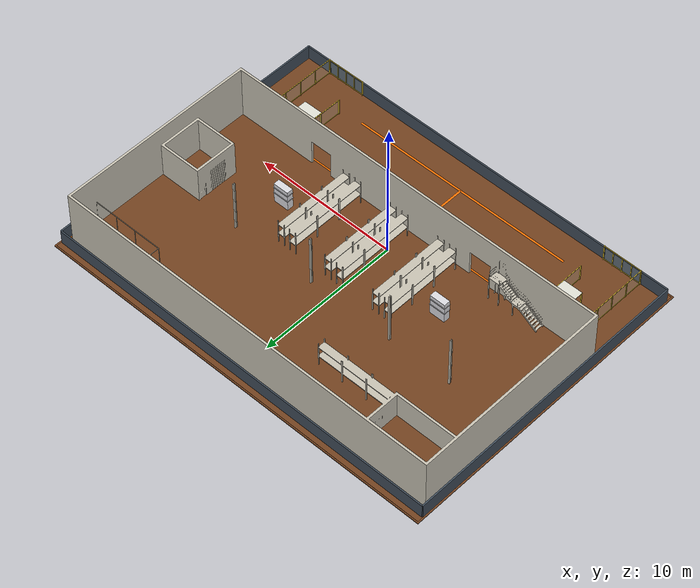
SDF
<?xml version="1.0" ?>
<sdf version="1.8">
  <world name="warehouse_world">
    <gui fullscreen="0">
      <camera name="user_camera">
        <pose>-12 0 8 0 0.62 0.42</pose>
      </camera>
    </gui>

    <physics name="1ms" type="ignored">
      <max_step_size>0.001</max_step_size>
      <real_time_factor>1.0</real_time_factor>
    </physics>

    <scene>
      <ambient>0.6 0.6 0.58 1</ambient>
      <background>0.93 0.95 0.98 1</background>
      <grid>false</grid>
      <shadows>true</shadows>
    </scene>

    <light type="directional" name="warehouse_sun">
      <cast_shadows>true</cast_shadows>
      <pose>0 0 12.5 0 0 0</pose>
      <diffuse>0.98 0.96 0.9 1</diffuse>
      <specular>0.2 0.2 0.2 1</specular>
      <attenuation>
        <range>125</range>
        <constant>0.9</constant>
        <linear>0.01</linear>
        <quadratic>0.001</quadratic>
      </attenuation>
      <direction>-0.35 0.2 -0.9</direction>
    </light>

    <plugin filename="ignition-gazebo-physics-system"
            name="ignition::gazebo::systems::Physics"/>
    <plugin filename="ignition-gazebo-user-commands-system"
            name="ignition::gazebo::systems::UserCommands"/>
    <plugin filename="ignition-gazebo-scene-broadcaster-system"
            name="ignition::gazebo::systems::SceneBroadcaster"/>
    <plugin filename="ignition-gazebo-sensors-system"
            name="ignition::gazebo::systems::Sensors">
      <render_engine>ogre2</render_engine>
    </plugin>

    <model name="floor">
      <static>true</static>
      <link name="floor_link">
        <pose>0 2.2 -0.025 0 0 0</pose>
        <collision name="collision">
          <geometry>
            <box>
              <size>28.6 21.6 0.05</size>
            </box>
          </geometry>
        </collision>
        <visual name="visual">
          <geometry>
            <box>
              <size>28.6 21.6 0.05</size>
            </box>
          </geometry>
          <material>
            <ambient>0.28 0.16 0.08 1</ambient>
            <diffuse>0.45 0.26 0.12 1</diffuse>
            <specular>0.02 0.02 0.02 1</specular>
          </material>
        </visual>
      </link>
    </model>

    <model name="floor_pad">
      <static>true</static>
      <link name="pad_link">
        <visual name="visual">
          <pose>0 2.2 0.001 0 0 0</pose>
          <geometry>
            <box>
              <size>28.4 21.4 0.002</size>
            </box>
          </geometry>
          <material>
            <ambient>0.28 0.16 0.08 1</ambient>
            <diffuse>0.45 0.26 0.12 1</diffuse>
            <specular>0.02 0.02 0.02 1</specular>
          </material>
        </visual>
      </link>
    </model>

    <model name="fence">
      <static>true</static>

      <link name="front">
        <pose>0 12.5 0.5 0 0 0</pose>
        <collision name="collision">
          <geometry>
            <box>
              <size>28.3 0.1 1</size>
            </box>
          </geometry>
        </collision>
        <visual name="visual">
          <geometry>
            <box>
              <size>28.3 0.1 1</size>
            </box>
          </geometry>
          <material>
            <ambient>0.2 0.25 0.3 1</ambient>
            <diffuse>0.25 0.3 0.35 1</diffuse>
          </material>
        </visual>
      </link>

      <link name="back">
        <pose>0 -8.1 0.5 0 0 0</pose>
        <collision name="collision">
          <geometry>
            <box>
              <size>28.3 0.1 1</size>
            </box>
          </geometry>
        </collision>
        <visual name="visual">
          <geometry>
            <box>
              <size>28.3 0.1 1</size>
            </box>
          </geometry>
          <material>
            <ambient>0.2 0.25 0.3 1</ambient>
            <diffuse>0.25 0.3 0.35 1</diffuse>
          </material>
        </visual>
      </link>

      <link name="left">
        <pose>-14.15 2.2 0.5 0 0 0</pose>
        <collision name="collision">
          <geometry>
            <box>
              <size>0.1 20.6 1</size>
            </box>
          </geometry>
        </collision>
        <visual name="visual">
          <geometry>
            <box>
              <size>0.1 20.6 1</size>
            </box>
          </geometry>
          <material>
            <ambient>0.2 0.25 0.3 1</ambient>
            <diffuse>0.25 0.3 0.35 1</diffuse>
          </material>
        </visual>
      </link>

      <link name="right">
        <pose>14.15 2.2 0.5 0 0 0</pose>
        <collision name="collision">
          <geometry>
            <box>
              <size>0.1 20.6 1</size>
            </box>
          </geometry>
        </collision>
        <visual name="visual">
          <geometry>
            <box>
              <size>0.1 20.6 1</size>
            </box>
          </geometry>
          <material>
            <ambient>0.2 0.25 0.3 1</ambient>
            <diffuse>0.25 0.3 0.35 1</diffuse>
          </material>
        </visual>
      </link>
    </model>

    <model name="warehouse_env">
      <static>true</static>
      <link name="link">
        <!-- The STL base sits 0.0254 m below its local origin, so use the same z offset
             here to keep the warehouse floor exactly level with the world floor. -->
        <pose>0 4.94 0 0 0 0</pose>

        <visual name="visual">
          <geometry>
            <mesh>
              <uri>../meshes/environment/env.stl</uri>
              <scale>0.00005 0.00005 0.00005</scale>
            </mesh>
          </geometry>
          <material>
            <ambient>0.62 0.6 0.55 1</ambient>
            <diffuse>0.78 0.76 0.7 1</diffuse>
            <specular>0.02 0.02 0.02 1</specular>
          </material>
        </visual>

      </link>
    </model>

    <model name="warehouse_collision_proxy">
      <static>true</static>

      <link name="left_room_outer_wall">
        <pose>-12.0 9.6 0.75 0 0 0</pose>
        <collision name="collision">
          <geometry>
            <box>
              <size>0.22 4.0 1.5</size>
            </box>
          </geometry>
        </collision>
      </link>

      <link name="left_room_back_wall">
        <pose>-10.2 11.45 0.75 0 0 0</pose>
        <collision name="collision">
          <geometry>
            <box>
              <size>3.8 0.22 1.5</size>
            </box>
          </geometry>
        </collision>
      </link>

      <link name="left_room_inner_wall">
        <pose>-8.55 9.6 0.75 0 0 0</pose>
        <collision name="collision">
          <geometry>
            <box>
              <size>0.22 4.0 1.5</size>
            </box>
          </geometry>
        </collision>
      </link>

      <link name="right_room_outer_wall">
        <pose>12.0 9.6 0.75 0 0 0</pose>
        <collision name="collision">
          <geometry>
            <box>
              <size>0.22 4.0 1.5</size>
            </box>
          </geometry>
        </collision>
      </link>

      <link name="right_room_back_wall">
        <pose>10.2 11.45 0.75 0 0 0</pose>
        <collision name="collision">
          <geometry>
            <box>
              <size>3.8 0.22 1.5</size>
            </box>
          </geometry>
        </collision>
      </link>

      <link name="right_room_inner_wall">
        <pose>8.55 9.6 0.75 0 0 0</pose>
        <collision name="collision">
          <geometry>
            <box>
              <size>0.22 4.0 1.5</size>
            </box>
          </geometry>
        </collision>
      </link>

      <link name="shelf_block_left">
        <pose>-2.2 5.45 0.8 0 0 0</pose>
        <collision name="collision">
          <geometry>
            <box>
              <size>0.85 4.8 1.6</size>
            </box>
          </geometry>
        </collision>
      </link>

      <link name="shelf_block_center">
        <pose>0.15 5.45 0.8 0 0 0</pose>
        <collision name="collision">
          <geometry>
            <box>
              <size>0.85 4.8 1.6</size>
            </box>
          </geometry>
        </collision>
      </link>

      <link name="shelf_block_right">
        <pose>2.5 5.45 0.8 0 0 0</pose>
        <collision name="collision">
          <geometry>
            <box>
              <size>0.85 4.8 1.6</size>
            </box>
          </geometry>
        </collision>
      </link>
    </model>

    <model name="door_rack_obstacles">
      <static>true</static>

      <link name="left_door_rack">
        <pose>-5.45 1.55 0 0 0 0</pose>
        <collision name="rack_body_collision">
          <pose>0 0 0.75 0 0 0</pose>
          <geometry>
            <box>
              <size>1.1 0.45 1.5</size>
            </box>
          </geometry>
        </collision>
        <visual name="rack_body">
          <pose>0 0 0.75 0 0 0</pose>
          <geometry>
            <box>
              <size>1.1 0.45 1.5</size>
            </box>
          </geometry>
          <material>
            <ambient>0.72 0.72 0.74 1</ambient>
            <diffuse>0.86 0.86 0.88 1</diffuse>
            <specular>0.04 0.04 0.04 1</specular>
          </material>
        </visual>
        <visual name="top_shelf">
          <pose>0 0 1.2 0 0 0</pose>
          <geometry>
            <box>
              <size>1.16 0.5 0.05</size>
            </box>
          </geometry>
          <material>
            <ambient>0.78 0.78 0.8 1</ambient>
            <diffuse>0.92 0.92 0.94 1</diffuse>
            <specular>0.04 0.04 0.04 1</specular>
          </material>
        </visual>
        <visual name="mid_shelf">
          <pose>0 0 0.75 0 0 0</pose>
          <geometry>
            <box>
              <size>1.16 0.5 0.05</size>
            </box>
          </geometry>
          <material>
            <ambient>0.78 0.78 0.8 1</ambient>
            <diffuse>0.92 0.92 0.94 1</diffuse>
            <specular>0.04 0.04 0.04 1</specular>
          </material>
        </visual>
      </link>

      <link name="right_door_rack">
        <pose>6.9 1.55 0 0 0 0</pose>
        <collision name="rack_body_collision">
          <pose>0 0 0.75 0 0 0</pose>
          <geometry>
            <box>
              <size>1.1 0.45 1.5</size>
            </box>
          </geometry>
        </collision>
        <visual name="rack_body">
          <pose>0 0 0.75 0 0 0</pose>
          <geometry>
            <box>
              <size>1.1 0.45 1.5</size>
            </box>
          </geometry>
          <material>
            <ambient>0.72 0.72 0.74 1</ambient>
            <diffuse>0.86 0.86 0.88 1</diffuse>
            <specular>0.04 0.04 0.04 1</specular>
          </material>
        </visual>
        <visual name="top_shelf">
          <pose>0 0 1.2 0 0 0</pose>
          <geometry>
            <box>
              <size>1.16 0.5 0.05</size>
            </box>
          </geometry>
          <material>
            <ambient>0.78 0.78 0.8 1</ambient>
            <diffuse>0.92 0.92 0.94 1</diffuse>
            <specular>0.04 0.04 0.04 1</specular>
          </material>
        </visual>
        <visual name="mid_shelf">
          <pose>0 0 0.75 0 0 0</pose>
          <geometry>
            <box>
              <size>1.16 0.5 0.05</size>
            </box>
          </geometry>
          <material>
            <ambient>0.78 0.78 0.8 1</ambient>
            <diffuse>0.92 0.92 0.94 1</diffuse>
            <specular>0.04 0.04 0.04 1</specular>
          </material>
        </visual>
      </link>
    </model>

    <model name="warehouse_zone_marking">
      <static>true</static>
      <link name="marking_link">
        <visual name="front_strip">
          <pose>0 12.09 0.00125 0 0 0</pose>
          <geometry>
            <box>
              <size>28.1 0.11 0.0025</size>
            </box>
          </geometry>
          <material>
            <ambient>0.95 0.35 0.0 1</ambient>
            <diffuse>1.0 0.45 0.0 1</diffuse>
            <specular>0.02 0.02 0.02 1</specular>
          </material>
        </visual>

        <visual name="back_strip">
          <pose>0 -2.21 0.00125 0 0 0</pose>
          <geometry>
            <box>
              <size>28.1 0.11 0.0025</size>
            </box>
          </geometry>
          <material>
            <ambient>0.95 0.35 0.0 1</ambient>
            <diffuse>1.0 0.45 0.0 1</diffuse>
            <specular>0.02 0.02 0.02 1</specular>
          </material>
        </visual>

        <visual name="left_strip">
          <pose>-14.105 4.94 0.00125 0 0 0</pose>
          <geometry>
            <box>
              <size>0.11 14.3 0.0025</size>
            </box>
          </geometry>
          <material>
            <ambient>0.95 0.35 0.0 1</ambient>
            <diffuse>1.0 0.45 0.0 1</diffuse>
            <specular>0.02 0.02 0.02 1</specular>
          </material>
        </visual>

        <visual name="right_strip">
          <pose>14.105 4.94 0.00125 0 0 0</pose>
          <geometry>
            <box>
              <size>0.11 14.3 0.0025</size>
            </box>
          </geometry>
          <material>
            <ambient>0.95 0.35 0.0 1</ambient>
            <diffuse>1.0 0.45 0.0 1</diffuse>
            <specular>0.02 0.02 0.02 1</specular>
          </material>
        </visual>

        <collision name="collision">
          <geometry>
            <mesh>
              <uri>../meshes/environment/env.stl</uri>
              <scale>0.00005 0.00005 0.00005</scale>
            </mesh>
          </geometry>
        </collision>
      </link>
    </model>

    <model name="t_path_marking">
      <static>true</static>
      <link name="t_path_link">
        <visual name="cross_bar">
          <pose>0 -6.3 0.00125 0 0 0</pose>
          <geometry>
            <box>
              <size>16 0.14 0.0025</size>
            </box>
          </geometry>
          <material>
            <ambient>0.95 0.35 0.0 1</ambient>
            <diffuse>1.0 0.45 0.0 1</diffuse>
            <specular>0.02 0.02 0.02 1</specular>
          </material>
        </visual>

        <visual name="stem">
          <pose>0 -4.15 0.00125 0 0 0</pose>
          <geometry>
            <box>
              <size>0.14 4.3 0.0025</size>
            </box>
          </geometry>
          <material>
            <ambient>0.95 0.35 0.0 1</ambient>
            <diffuse>1.0 0.45 0.0 1</diffuse>
            <specular>0.02 0.02 0.02 1</specular>
          </material>
        </visual>
      </link>
    </model>

    <model name="security_fence_back_right">
      <static>true</static>
      <pose>10.9 -5.45 0 0 0 0</pose>

      <link name="back_panel">
        <pose>0 -2.55 0 0 0 0</pose>
        <collision name="panel_collision">
          <pose>0 0 0.6 0 0 0</pose>
          <geometry>
            <box>
              <size>2.7 0.03 1.15</size>
            </box>
          </geometry>
        </collision>
        <visual name="panel_mesh">
          <pose>0 0 0.6 0 0 0</pose>
          <geometry>
            <box>
              <size>2.55 0.0125 1.025</size>
            </box>
          </geometry>
          <material>
            <ambient>0.75 0.77 0.78 0.25</ambient>
            <diffuse>0.82 0.84 0.85 0.25</diffuse>
            <specular>0.1 0.1 0.1 0.2</specular>
          </material>
        </visual>
        <visual name="top_rail">
          <pose>0 0 1.175 0 0 0</pose>
          <geometry>
            <box>
              <size>2.7 0.04 0.04</size>
            </box>
          </geometry>
          <material>
            <ambient>0.88 0.76 0.18 1</ambient>
            <diffuse>0.95 0.82 0.2 1</diffuse>
          </material>
        </visual>
        <visual name="bottom_rail">
          <pose>0 0 0.075 0 0 0</pose>
          <geometry>
            <box>
              <size>2.7 0.04 0.04</size>
            </box>
          </geometry>
          <material>
            <ambient>0.88 0.76 0.18 1</ambient>
            <diffuse>0.95 0.82 0.2 1</diffuse>
          </material>
        </visual>
        <visual name="left_post">
          <pose>-1.35 0 0.6 0 0 0</pose>
          <geometry>
            <box>
              <size>0.06 0.06 1.2</size>
            </box>
          </geometry>
          <material>
            <ambient>0.88 0.76 0.18 1</ambient>
            <diffuse>0.95 0.82 0.2 1</diffuse>
          </material>
        </visual>
        <visual name="mid_left_post">
          <pose>-0.675 0 0.6 0 0 0</pose>
          <geometry>
            <box>
              <size>0.05 0.05 1.2</size>
            </box>
          </geometry>
          <material>
            <ambient>0.88 0.76 0.18 1</ambient>
            <diffuse>0.95 0.82 0.2 1</diffuse>
          </material>
        </visual>
        <visual name="mid_post">
          <pose>0 0 0.6 0 0 0</pose>
          <geometry>
            <box>
              <size>0.05 0.05 1.2</size>
            </box>
          </geometry>
          <material>
            <ambient>0.88 0.76 0.18 1</ambient>
            <diffuse>0.95 0.82 0.2 1</diffuse>
          </material>
        </visual>
        <visual name="mid_right_post">
          <pose>0.675 0 0.6 0 0 0</pose>
          <geometry>
            <box>
              <size>0.05 0.05 1.2</size>
            </box>
          </geometry>
          <material>
            <ambient>0.88 0.76 0.18 1</ambient>
            <diffuse>0.95 0.82 0.2 1</diffuse>
          </material>
        </visual>
        <visual name="right_post">
          <pose>1.35 0 0.6 0 0 0</pose>
          <geometry>
            <box>
              <size>0.06 0.06 1.2</size>
            </box>
          </geometry>
          <material>
            <ambient>0.88 0.76 0.18 1</ambient>
            <diffuse>0.95 0.82 0.2 1</diffuse>
          </material>
        </visual>
      </link>

      <link name="right_panel">
        <pose>1.375 0 0 0 0 1.5708</pose>
        <collision name="panel_collision">
          <pose>0 0 0.6 0 0 0</pose>
          <geometry>
            <box>
              <size>5.1 0.03 1.15</size>
            </box>
          </geometry>
        </collision>
        <visual name="panel_mesh">
          <pose>0 0 0.6 0 0 0</pose>
          <geometry>
            <box>
              <size>4.95 0.0125 1.025</size>
            </box>
          </geometry>
          <material>
            <ambient>0.75 0.77 0.78 0.25</ambient>
            <diffuse>0.82 0.84 0.85 0.25</diffuse>
            <specular>0.1 0.1 0.1 0.2</specular>
          </material>
        </visual>
        <visual name="top_rail">
          <pose>0 0 1.175 0 0 0</pose>
          <geometry>
            <box>
              <size>5.1 0.04 0.04</size>
            </box>
          </geometry>
          <material>
            <ambient>0.88 0.76 0.18 1</ambient>
            <diffuse>0.95 0.82 0.2 1</diffuse>
          </material>
        </visual>
        <visual name="bottom_rail">
          <pose>0 0 0.075 0 0 0</pose>
          <geometry>
            <box>
              <size>5.1 0.04 0.04</size>
            </box>
          </geometry>
          <material>
            <ambient>0.88 0.76 0.18 1</ambient>
            <diffuse>0.95 0.82 0.2 1</diffuse>
          </material>
        </visual>
        <visual name="rear_post">
          <pose>-2.55 0 0.6 0 0 0</pose>
          <geometry>
            <box>
              <size>0.06 0.06 1.2</size>
            </box>
          </geometry>
          <material>
            <ambient>0.88 0.76 0.18 1</ambient>
            <diffuse>0.95 0.82 0.2 1</diffuse>
          </material>
        </visual>
        <visual name="rear_mid_post">
          <pose>-1.275 0 0.6 0 0 0</pose>
          <geometry>
            <box>
              <size>0.05 0.05 1.2</size>
            </box>
          </geometry>
          <material>
            <ambient>0.88 0.76 0.18 1</ambient>
            <diffuse>0.95 0.82 0.2 1</diffuse>
          </material>
        </visual>
        <visual name="mid_post">
          <pose>0 0 0.6 0 0 0</pose>
          <geometry>
            <box>
              <size>0.05 0.05 1.2</size>
            </box>
          </geometry>
          <material>
            <ambient>0.88 0.76 0.18 1</ambient>
            <diffuse>0.95 0.82 0.2 1</diffuse>
          </material>
        </visual>
        <visual name="front_mid_post">
          <pose>1.275 0 0.6 0 0 0</pose>
          <geometry>
            <box>
              <size>0.05 0.05 1.2</size>
            </box>
          </geometry>
          <material>
            <ambient>0.88 0.76 0.18 1</ambient>
            <diffuse>0.95 0.82 0.2 1</diffuse>
          </material>
        </visual>
        <visual name="front_post">
          <pose>2.55 0 0.6 0 0 0</pose>
          <geometry>
            <box>
              <size>0.06 0.06 1.2</size>
            </box>
          </geometry>
          <material>
            <ambient>0.88 0.76 0.18 1</ambient>
            <diffuse>0.95 0.82 0.2 1</diffuse>
          </material>
        </visual>
      </link>

      <link name="front_run">
        <pose>0.4 2.55 0 0 0 0</pose>
        <collision name="panel_collision">
          <pose>0 0 0.6 0 0 0</pose>
          <geometry>
            <box>
              <size>1.9 0.03 1.15</size>
            </box>
          </geometry>
        </collision>
        <collision name="left_post_collision">
          <pose>-0.95 0 0.6 0 0 0</pose>
          <geometry>
            <box>
              <size>0.06 0.06 1.2</size>
            </box>
          </geometry>
        </collision>
        <collision name="right_post_collision">
          <pose>0.95 0 0.6 0 0 0</pose>
          <geometry>
            <box>
              <size>0.06 0.06 1.2</size>
            </box>
          </geometry>
        </collision>
        <visual name="panel_mesh">
          <pose>0 0 0.6 0 0 0</pose>
          <geometry>
            <box>
              <size>1.75 0.0125 1.025</size>
            </box>
          </geometry>
          <material>
            <ambient>0.75 0.77 0.78 0.25</ambient>
            <diffuse>0.82 0.84 0.85 0.25</diffuse>
            <specular>0.1 0.1 0.1 0.2</specular>
          </material>
        </visual>
        <visual name="top_rail">
          <pose>0 0 1.175 0 0 0</pose>
          <geometry>
            <box>
              <size>1.9 0.04 0.04</size>
            </box>
          </geometry>
          <material>
            <ambient>0.88 0.76 0.18 1</ambient>
            <diffuse>0.95 0.82 0.2 1</diffuse>
          </material>
        </visual>
        <visual name="bottom_rail">
          <pose>0 0 0.075 0 0 0</pose>
          <geometry>
            <box>
              <size>1.9 0.04 0.04</size>
            </box>
          </geometry>
          <material>
            <ambient>0.88 0.76 0.18 1</ambient>
            <diffuse>0.95 0.82 0.2 1</diffuse>
          </material>
        </visual>
        <visual name="left_post">
          <pose>-0.95 0 0.6 0 0 0</pose>
          <geometry>
            <box>
              <size>0.06 0.06 1.2</size>
            </box>
          </geometry>
          <material>
            <ambient>0.88 0.76 0.18 1</ambient>
            <diffuse>0.95 0.82 0.2 1</diffuse>
          </material>
        </visual>
        <visual name="right_post">
          <pose>0.95 0 0.6 0 0 0</pose>
          <geometry>
            <box>
              <size>0.06 0.06 1.2</size>
            </box>
          </geometry>
          <material>
            <ambient>0.88 0.76 0.18 1</ambient>
            <diffuse>0.95 0.82 0.2 1</diffuse>
          </material>
        </visual>
      </link>

      <link name="left_return">
        <pose>-1.375 1.075 0 0 0 1.5708</pose>
        <collision name="panel_collision">
          <pose>0 0 0.6 0 0 0</pose>
          <geometry>
            <box>
              <size>3.1 0.03 1.15</size>
            </box>
          </geometry>
        </collision>
        <collision name="rear_post_collision">
          <pose>-1.55 0 0.6 0 0 0</pose>
          <geometry>
            <box>
              <size>0.06 0.06 1.2</size>
            </box>
          </geometry>
        </collision>
        <collision name="front_post_collision">
          <pose>1.55 0 0.6 0 0 0</pose>
          <geometry>
            <box>
              <size>0.06 0.06 1.2</size>
            </box>
          </geometry>
        </collision>
        <visual name="panel_mesh">
          <pose>0 0 0.6 0 0 0</pose>
          <geometry>
            <box>
              <size>2.95 0.0125 1.025</size>
            </box>
          </geometry>
          <material>
            <ambient>0.75 0.77 0.78 0.25</ambient>
            <diffuse>0.82 0.84 0.85 0.25</diffuse>
            <specular>0.1 0.1 0.1 0.2</specular>
          </material>
        </visual>
        <visual name="top_rail">
          <pose>0 0 1.175 0 0 0</pose>
          <geometry>
            <box>
              <size>3.1 0.04 0.04</size>
            </box>
          </geometry>
          <material>
            <ambient>0.88 0.76 0.18 1</ambient>
            <diffuse>0.95 0.82 0.2 1</diffuse>
          </material>
        </visual>
        <visual name="bottom_rail">
          <pose>0 0 0.075 0 0 0</pose>
          <geometry>
            <box>
              <size>3.1 0.04 0.04</size>
            </box>
          </geometry>
          <material>
            <ambient>0.88 0.76 0.18 1</ambient>
            <diffuse>0.95 0.82 0.2 1</diffuse>
          </material>
        </visual>
        <visual name="rear_post">
          <pose>-1.55 0 0.6 0 0 0</pose>
          <geometry>
            <box>
              <size>0.06 0.06 1.2</size>
            </box>
          </geometry>
          <material>
            <ambient>0.88 0.76 0.18 1</ambient>
            <diffuse>0.95 0.82 0.2 1</diffuse>
          </material>
        </visual>
        <visual name="front_post">
          <pose>1.55 0 0.6 0 0 0</pose>
          <geometry>
            <box>
              <size>0.06 0.06 1.2</size>
            </box>
          </geometry>
          <material>
            <ambient>0.88 0.76 0.18 1</ambient>
            <diffuse>0.95 0.82 0.2 1</diffuse>
          </material>
        </visual>
      </link>

      <link name="roofed_bay">
        <pose>-0.675 1.775 0 0 0 0</pose>
        <collision name="roof_collision">
          <pose>0 0 1.19 0 0 0</pose>
          <geometry>
            <box>
              <size>1.35 1.55 0.04</size>
            </box>
          </geometry>
        </collision>
        <collision name="left_front_post_collision">
          <pose>-0.65 0.725 0.6 0 0 0</pose>
          <geometry>
            <box>
              <size>0.06 0.06 1.2</size>
            </box>
          </geometry>
        </collision>
        <collision name="right_front_post_collision">
          <pose>0.65 0.725 0.6 0 0 0</pose>
          <geometry>
            <box>
              <size>0.06 0.06 1.2</size>
            </box>
          </geometry>
        </collision>
        <collision name="left_rear_post_collision">
          <pose>-0.65 -0.725 0.6 0 0 0</pose>
          <geometry>
            <box>
              <size>0.06 0.06 1.2</size>
            </box>
          </geometry>
        </collision>
        <collision name="right_rear_post_collision">
          <pose>0.65 -0.725 0.6 0 0 0</pose>
          <geometry>
            <box>
              <size>0.06 0.06 1.2</size>
            </box>
          </geometry>
        </collision>
        <visual name="roof">
          <pose>0 0 1.19 0 0 0</pose>
          <geometry>
            <box>
              <size>1.35 1.55 0.04</size>
            </box>
          </geometry>
          <material>
            <ambient>0.8 0.8 0.76 1</ambient>
            <diffuse>0.88 0.88 0.84 1</diffuse>
            <specular>0.05 0.05 0.05 1</specular>
          </material>
        </visual>
        <visual name="left_front_post">
          <pose>-0.65 0.725 0.6 0 0 0</pose>
          <geometry>
            <box>
              <size>0.06 0.06 1.2</size>
            </box>
          </geometry>
          <material>
            <ambient>0.88 0.76 0.18 1</ambient>
            <diffuse>0.95 0.82 0.2 1</diffuse>
          </material>
        </visual>
        <visual name="right_front_post">
          <pose>0.65 0.725 0.6 0 0 0</pose>
          <geometry>
            <box>
              <size>0.06 0.06 1.2</size>
            </box>
          </geometry>
          <material>
            <ambient>0.88 0.76 0.18 1</ambient>
            <diffuse>0.95 0.82 0.2 1</diffuse>
          </material>
        </visual>
        <visual name="left_rear_post">
          <pose>-0.65 -0.725 0.6 0 0 0</pose>
          <geometry>
            <box>
              <size>0.06 0.06 1.2</size>
            </box>
          </geometry>
          <material>
            <ambient>0.88 0.76 0.18 1</ambient>
            <diffuse>0.95 0.82 0.2 1</diffuse>
          </material>
        </visual>
        <visual name="right_rear_post">
          <pose>0.65 -0.725 0.6 0 0 0</pose>
          <geometry>
            <box>
              <size>0.06 0.06 1.2</size>
            </box>
          </geometry>
          <material>
            <ambient>0.88 0.76 0.18 1</ambient>
            <diffuse>0.95 0.82 0.2 1</diffuse>
          </material>
        </visual>
        <visual name="door_panel">
          <pose>0 0.74 0.55 0 0 0</pose>
          <geometry>
            <box>
              <size>1.1 0.015 0.95</size>
            </box>
          </geometry>
          <material>
            <ambient>0.75 0.77 0.78 0.2</ambient>
            <diffuse>0.82 0.84 0.85 0.2</diffuse>
            <specular>0.1 0.1 0.1 0.2</specular>
          </material>
        </visual>
      </link>
    </model>

    <model name="security_fence_back_left">
      <static>true</static>
      <pose>-10.9 -5.45 0 0 0 0</pose>

      <link name="back_panel">
        <pose>0 -2.55 0 0 0 0</pose>
        <collision name="panel_collision">
          <pose>0 0 0.6 0 0 0</pose>
          <geometry>
            <box>
              <size>2.7 0.03 1.15</size>
            </box>
          </geometry>
        </collision>
        <visual name="panel_mesh">
          <pose>0 0 0.6 0 0 0</pose>
          <geometry>
            <box>
              <size>2.55 0.0125 1.025</size>
            </box>
          </geometry>
          <material>
            <ambient>0.75 0.77 0.78 0.25</ambient>
            <diffuse>0.82 0.84 0.85 0.25</diffuse>
            <specular>0.1 0.1 0.1 0.2</specular>
          </material>
        </visual>
        <visual name="top_rail">
          <pose>0 0 1.175 0 0 0</pose>
          <geometry>
            <box>
              <size>2.7 0.04 0.04</size>
            </box>
          </geometry>
          <material>
            <ambient>0.88 0.76 0.18 1</ambient>
            <diffuse>0.95 0.82 0.2 1</diffuse>
          </material>
        </visual>
        <visual name="bottom_rail">
          <pose>0 0 0.075 0 0 0</pose>
          <geometry>
            <box>
              <size>2.7 0.04 0.04</size>
            </box>
          </geometry>
          <material>
            <ambient>0.88 0.76 0.18 1</ambient>
            <diffuse>0.95 0.82 0.2 1</diffuse>
          </material>
        </visual>
        <visual name="left_post">
          <pose>-1.35 0 0.6 0 0 0</pose>
          <geometry>
            <box>
              <size>0.06 0.06 1.2</size>
            </box>
          </geometry>
          <material>
            <ambient>0.88 0.76 0.18 1</ambient>
            <diffuse>0.95 0.82 0.2 1</diffuse>
          </material>
        </visual>
        <visual name="mid_left_post">
          <pose>-0.675 0 0.6 0 0 0</pose>
          <geometry>
            <box>
              <size>0.05 0.05 1.2</size>
            </box>
          </geometry>
          <material>
            <ambient>0.88 0.76 0.18 1</ambient>
            <diffuse>0.95 0.82 0.2 1</diffuse>
          </material>
        </visual>
        <visual name="mid_post">
          <pose>0 0 0.6 0 0 0</pose>
          <geometry>
            <box>
              <size>0.05 0.05 1.2</size>
            </box>
          </geometry>
          <material>
            <ambient>0.88 0.76 0.18 1</ambient>
            <diffuse>0.95 0.82 0.2 1</diffuse>
          </material>
        </visual>
        <visual name="mid_right_post">
          <pose>0.675 0 0.6 0 0 0</pose>
          <geometry>
            <box>
              <size>0.05 0.05 1.2</size>
            </box>
          </geometry>
          <material>
            <ambient>0.88 0.76 0.18 1</ambient>
            <diffuse>0.95 0.82 0.2 1</diffuse>
          </material>
        </visual>
        <visual name="right_post">
          <pose>1.35 0 0.6 0 0 0</pose>
          <geometry>
            <box>
              <size>0.06 0.06 1.2</size>
            </box>
          </geometry>
          <material>
            <ambient>0.88 0.76 0.18 1</ambient>
            <diffuse>0.95 0.82 0.2 1</diffuse>
          </material>
        </visual>
      </link>

      <link name="left_panel">
        <pose>-1.375 0 0 0 0 1.5708</pose>
        <collision name="panel_collision">
          <pose>0 0 0.6 0 0 0</pose>
          <geometry>
            <box>
              <size>5.1 0.03 1.15</size>
            </box>
          </geometry>
        </collision>
        <visual name="panel_mesh">
          <pose>0 0 0.6 0 0 0</pose>
          <geometry>
            <box>
              <size>4.95 0.0125 1.025</size>
            </box>
          </geometry>
          <material>
            <ambient>0.75 0.77 0.78 0.25</ambient>
            <diffuse>0.82 0.84 0.85 0.25</diffuse>
            <specular>0.1 0.1 0.1 0.2</specular>
          </material>
        </visual>
        <visual name="top_rail">
          <pose>0 0 1.175 0 0 0</pose>
          <geometry>
            <box>
              <size>5.1 0.04 0.04</size>
            </box>
          </geometry>
          <material>
            <ambient>0.88 0.76 0.18 1</ambient>
            <diffuse>0.95 0.82 0.2 1</diffuse>
          </material>
        </visual>
        <visual name="bottom_rail">
          <pose>0 0 0.075 0 0 0</pose>
          <geometry>
            <box>
              <size>5.1 0.04 0.04</size>
            </box>
          </geometry>
          <material>
            <ambient>0.88 0.76 0.18 1</ambient>
            <diffuse>0.95 0.82 0.2 1</diffuse>
          </material>
        </visual>
        <visual name="rear_post">
          <pose>-2.55 0 0.6 0 0 0</pose>
          <geometry>
            <box>
              <size>0.06 0.06 1.2</size>
            </box>
          </geometry>
          <material>
            <ambient>0.88 0.76 0.18 1</ambient>
            <diffuse>0.95 0.82 0.2 1</diffuse>
          </material>
        </visual>
        <visual name="rear_mid_post">
          <pose>-1.275 0 0.6 0 0 0</pose>
          <geometry>
            <box>
              <size>0.05 0.05 1.2</size>
            </box>
          </geometry>
          <material>
            <ambient>0.88 0.76 0.18 1</ambient>
            <diffuse>0.95 0.82 0.2 1</diffuse>
          </material>
        </visual>
        <visual name="mid_post">
          <pose>0 0 0.6 0 0 0</pose>
          <geometry>
            <box>
              <size>0.05 0.05 1.2</size>
            </box>
          </geometry>
          <material>
            <ambient>0.88 0.76 0.18 1</ambient>
            <diffuse>0.95 0.82 0.2 1</diffuse>
          </material>
        </visual>
        <visual name="front_mid_post">
          <pose>1.275 0 0.6 0 0 0</pose>
          <geometry>
            <box>
              <size>0.05 0.05 1.2</size>
            </box>
          </geometry>
          <material>
            <ambient>0.88 0.76 0.18 1</ambient>
            <diffuse>0.95 0.82 0.2 1</diffuse>
          </material>
        </visual>
        <visual name="front_post">
          <pose>2.55 0 0.6 0 0 0</pose>
          <geometry>
            <box>
              <size>0.06 0.06 1.2</size>
            </box>
          </geometry>
          <material>
            <ambient>0.88 0.76 0.18 1</ambient>
            <diffuse>0.95 0.82 0.2 1</diffuse>
          </material>
        </visual>
      </link>

      <link name="front_run">
        <pose>-0.4 2.55 0 0 0 0</pose>
        <collision name="panel_collision">
          <pose>0 0 0.6 0 0 0</pose>
          <geometry>
            <box>
              <size>1.9 0.03 1.15</size>
            </box>
          </geometry>
        </collision>
        <collision name="left_post_collision">
          <pose>-0.95 0 0.6 0 0 0</pose>
          <geometry>
            <box>
              <size>0.06 0.06 1.2</size>
            </box>
          </geometry>
        </collision>
        <collision name="right_post_collision">
          <pose>0.95 0 0.6 0 0 0</pose>
          <geometry>
            <box>
              <size>0.06 0.06 1.2</size>
            </box>
          </geometry>
        </collision>
        <visual name="panel_mesh">
          <pose>0 0 0.6 0 0 0</pose>
          <geometry>
            <box>
              <size>1.75 0.0125 1.025</size>
            </box>
          </geometry>
          <material>
            <ambient>0.75 0.77 0.78 0.25</ambient>
            <diffuse>0.82 0.84 0.85 0.25</diffuse>
            <specular>0.1 0.1 0.1 0.2</specular>
          </material>
        </visual>
        <visual name="top_rail">
          <pose>0 0 1.175 0 0 0</pose>
          <geometry>
            <box>
              <size>1.9 0.04 0.04</size>
            </box>
          </geometry>
          <material>
            <ambient>0.88 0.76 0.18 1</ambient>
            <diffuse>0.95 0.82 0.2 1</diffuse>
          </material>
        </visual>
        <visual name="bottom_rail">
          <pose>0 0 0.075 0 0 0</pose>
          <geometry>
            <box>
              <size>1.9 0.04 0.04</size>
            </box>
          </geometry>
          <material>
            <ambient>0.88 0.76 0.18 1</ambient>
            <diffuse>0.95 0.82 0.2 1</diffuse>
          </material>
        </visual>
        <visual name="left_post">
          <pose>-0.95 0 0.6 0 0 0</pose>
          <geometry>
            <box>
              <size>0.06 0.06 1.2</size>
            </box>
          </geometry>
          <material>
            <ambient>0.88 0.76 0.18 1</ambient>
            <diffuse>0.95 0.82 0.2 1</diffuse>
          </material>
        </visual>
        <visual name="right_post">
          <pose>0.95 0 0.6 0 0 0</pose>
          <geometry>
            <box>
              <size>0.06 0.06 1.2</size>
            </box>
          </geometry>
          <material>
            <ambient>0.88 0.76 0.18 1</ambient>
            <diffuse>0.95 0.82 0.2 1</diffuse>
          </material>
        </visual>
      </link>

      <link name="right_return">
        <pose>1.375 1.075 0 0 0 1.5708</pose>
        <collision name="panel_collision">
          <pose>0 0 0.6 0 0 0</pose>
          <geometry>
            <box>
              <size>3.1 0.03 1.15</size>
            </box>
          </geometry>
        </collision>
        <collision name="rear_post_collision">
          <pose>-1.55 0 0.6 0 0 0</pose>
          <geometry>
            <box>
              <size>0.06 0.06 1.2</size>
            </box>
          </geometry>
        </collision>
        <collision name="front_post_collision">
          <pose>1.55 0 0.6 0 0 0</pose>
          <geometry>
            <box>
              <size>0.06 0.06 1.2</size>
            </box>
          </geometry>
        </collision>
        <visual name="panel_mesh">
          <pose>0 0 0.6 0 0 0</pose>
          <geometry>
            <box>
              <size>2.95 0.0125 1.025</size>
            </box>
          </geometry>
          <material>
            <ambient>0.75 0.77 0.78 0.25</ambient>
            <diffuse>0.82 0.84 0.85 0.25</diffuse>
            <specular>0.1 0.1 0.1 0.2</specular>
          </material>
        </visual>
        <visual name="top_rail">
          <pose>0 0 1.175 0 0 0</pose>
          <geometry>
            <box>
              <size>3.1 0.04 0.04</size>
            </box>
          </geometry>
          <material>
            <ambient>0.88 0.76 0.18 1</ambient>
            <diffuse>0.95 0.82 0.2 1</diffuse>
          </material>
        </visual>
        <visual name="bottom_rail">
          <pose>0 0 0.075 0 0 0</pose>
          <geometry>
            <box>
              <size>3.1 0.04 0.04</size>
            </box>
          </geometry>
          <material>
            <ambient>0.88 0.76 0.18 1</ambient>
            <diffuse>0.95 0.82 0.2 1</diffuse>
          </material>
        </visual>
        <visual name="rear_post">
          <pose>-1.55 0 0.6 0 0 0</pose>
          <geometry>
            <box>
              <size>0.06 0.06 1.2</size>
            </box>
          </geometry>
          <material>
            <ambient>0.88 0.76 0.18 1</ambient>
            <diffuse>0.95 0.82 0.2 1</diffuse>
          </material>
        </visual>
        <visual name="front_post">
          <pose>1.55 0 0.6 0 0 0</pose>
          <geometry>
            <box>
              <size>0.06 0.06 1.2</size>
            </box>
          </geometry>
          <material>
            <ambient>0.88 0.76 0.18 1</ambient>
            <diffuse>0.95 0.82 0.2 1</diffuse>
          </material>
        </visual>
      </link>

      <link name="roofed_bay">
        <pose>0.675 1.775 0 0 0 0</pose>
        <collision name="roof_collision">
          <pose>0 0 1.19 0 0 0</pose>
          <geometry>
            <box>
              <size>1.35 1.55 0.04</size>
            </box>
          </geometry>
        </collision>
        <collision name="left_front_post_collision">
          <pose>-0.65 0.725 0.6 0 0 0</pose>
          <geometry>
            <box>
              <size>0.06 0.06 1.2</size>
            </box>
          </geometry>
        </collision>
        <collision name="right_front_post_collision">
          <pose>0.65 0.725 0.6 0 0 0</pose>
          <geometry>
            <box>
              <size>0.06 0.06 1.2</size>
            </box>
          </geometry>
        </collision>
        <collision name="left_rear_post_collision">
          <pose>-0.65 -0.725 0.6 0 0 0</pose>
          <geometry>
            <box>
              <size>0.06 0.06 1.2</size>
            </box>
          </geometry>
        </collision>
        <collision name="right_rear_post_collision">
          <pose>0.65 -0.725 0.6 0 0 0</pose>
          <geometry>
            <box>
              <size>0.06 0.06 1.2</size>
            </box>
          </geometry>
        </collision>
        <visual name="roof">
          <pose>0 0 1.19 0 0 0</pose>
          <geometry>
            <box>
              <size>1.35 1.55 0.04</size>
            </box>
          </geometry>
          <material>
            <ambient>0.8 0.8 0.76 1</ambient>
            <diffuse>0.88 0.88 0.84 1</diffuse>
            <specular>0.05 0.05 0.05 1</specular>
          </material>
        </visual>
        <visual name="left_front_post">
          <pose>-0.65 0.725 0.6 0 0 0</pose>
          <geometry>
            <box>
              <size>0.06 0.06 1.2</size>
            </box>
          </geometry>
          <material>
            <ambient>0.88 0.76 0.18 1</ambient>
            <diffuse>0.95 0.82 0.2 1</diffuse>
          </material>
        </visual>
        <visual name="right_front_post">
          <pose>0.65 0.725 0.6 0 0 0</pose>
          <geometry>
            <box>
              <size>0.06 0.06 1.2</size>
            </box>
          </geometry>
          <material>
            <ambient>0.88 0.76 0.18 1</ambient>
            <diffuse>0.95 0.82 0.2 1</diffuse>
          </material>
        </visual>
        <visual name="left_rear_post">
          <pose>-0.65 -0.725 0.6 0 0 0</pose>
          <geometry>
            <box>
              <size>0.06 0.06 1.2</size>
            </box>
          </geometry>
          <material>
            <ambient>0.88 0.76 0.18 1</ambient>
            <diffuse>0.95 0.82 0.2 1</diffuse>
          </material>
        </visual>
        <visual name="right_rear_post">
          <pose>0.65 -0.725 0.6 0 0 0</pose>
          <geometry>
            <box>
              <size>0.06 0.06 1.2</size>
            </box>
          </geometry>
          <material>
            <ambient>0.88 0.76 0.18 1</ambient>
            <diffuse>0.95 0.82 0.2 1</diffuse>
          </material>
        </visual>
        <visual name="door_panel">
          <pose>0 0.74 0.55 0 0 0</pose>
          <geometry>
            <box>
              <size>1.1 0.015 0.95</size>
            </box>
          </geometry>
          <material>
            <ambient>0.75 0.77 0.78 0.2</ambient>
            <diffuse>0.82 0.84 0.85 0.2</diffuse>
            <specular>0.1 0.1 0.1 0.2</specular>
          </material>
        </visual>
      </link>
    </model>

  </world>
</sdf>
